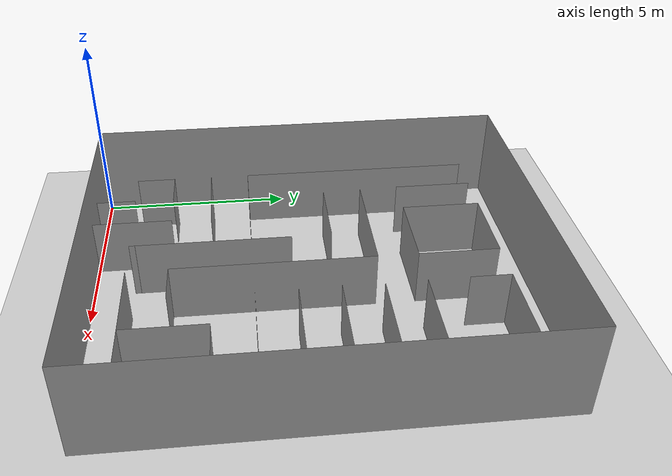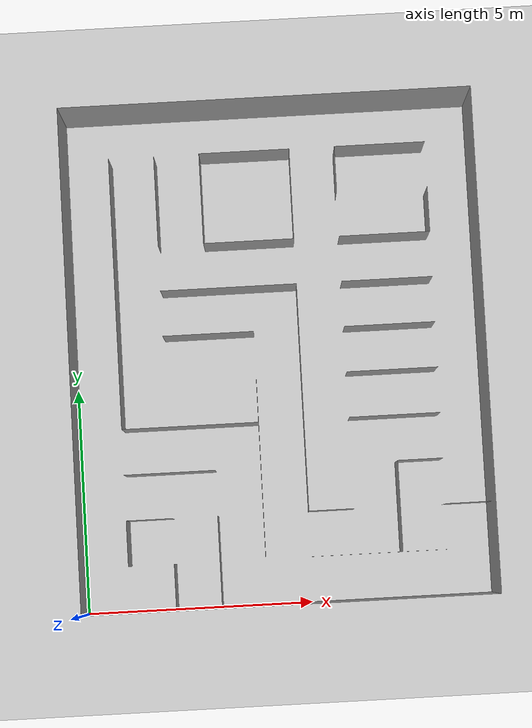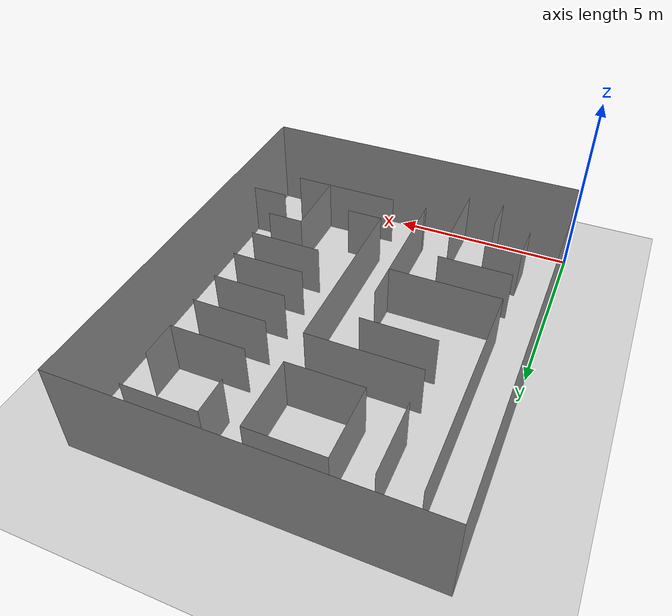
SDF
<sdf version="1.7">
 <world name="default">
  <light name="sun" type="directional">
   <pose>0 0 10 0 -0 0</pose>
   <diffuse>0.8 0.8 0.8 1</diffuse>
   <specular>0.2 0.2 0.2 1</specular>
   <attenuation>
    <range>1000</range>
    <constant>0.9</constant>
    <linear>0.01</linear>
    <quadratic>0.001</quadratic>
   </attenuation>
   <direction>-0.5 0.1 -0.9</direction>
   <spot><inner_angle>0</inner_angle><outer_angle>0</outer_angle><falloff>0</falloff></spot>
  </light>
  <model name="ground_plane">
   <static>1</static>
   <link name="link">
    <collision name="collision">
     <geometry><plane><normal>0 0 1</normal><size>100 100</size></plane></geometry>
     <surface>
      <contact><collide_bitmask>65535</collide_bitmask></contact>
      <friction><ode><mu>100</mu><mu2>50</mu2></ode></friction>
     </surface>
    </collision>
    <visual name="visual">
     <cast_shadows>0</cast_shadows>
     <geometry><plane><normal>0 0 1</normal><size>100 100</size></plane></geometry>
     <material>
      <script><uri>file://media/materials/scripts/gazebo.material</uri><name>Gazebo/Grey</name></script>
     </material>
    </visual>
   </link>
  </model>
  <gravity>0 0 -9.8</gravity>
  <magnetic_field>6e-06 2.3e-05 -4.2e-05</magnetic_field>
  <atmosphere type="adiabatic"/>
  <physics type="ode">
   <max_step_size>0.001</max_step_size>
   <real_time_factor>1</real_time_factor>
   <real_time_update_rate>1000</real_time_update_rate>
  </physics>
  <scene><ambient>0.4 0.4 0.4 1</ambient><background>0.7 0.7 0.7 1</background><shadows>1</shadows></scene>
  <spherical_coordinates>
   <surface_model>EARTH_WGS84</surface_model>
   <latitude_deg>0</latitude_deg>
   <longitude_deg>0</longitude_deg>
   <elevation>0</elevation>
   <heading_deg>0</heading_deg>
  </spherical_coordinates>
  <model name="Pacturtle_v2">
   <pose>4.5088 5.50985 0 0 -0 0</pose>
   <link name="Wall_1">
    <collision name="Wall_1_Collision">
     <geometry><box><size>2 0.01 1.5</size></box></geometry>
     <pose>0 0 0.75 0 -0 0</pose>
    </collision>
    <visual name="Wall_1_Visual">
     <pose>0 0 0.75 0 -0 0</pose>
     <geometry><box><size>2 0 1.5</size></box></geometry>
     <material>
      <script><uri>file://media/materials/scripts/gazebo.material</uri><name>Gazebo/Grey</name></script>
      <ambient>1 1 1 1</ambient>
     </material>
     <meta><layer>0</layer></meta>
    </visual>
    <pose>-1.5 0.5 0 0 -0 0</pose>
   </link>
   <link name="Wall_11">
    <collision name="Wall_11_Collision">
     <geometry><box><size>6 0.01 1.5</size></box></geometry>
     <pose>0 0 0.75 0 -0 0</pose>
    </collision>
    <visual name="Wall_11_Visual">
     <pose>0 0 0.75 0 -0 0</pose>
     <geometry><box><size>6 0 1.5</size></box></geometry>
     <material>
      <script><uri>file://media/materials/scripts/gazebo.material</uri><name>Gazebo/Grey</name></script>
      <ambient>1 1 1 1</ambient>
     </material>
     <meta><layer>0</layer></meta>
    </visual>
    <pose>-3.5 1.5 0 0 -0 1.5708</pose>
   </link>
   <link name="Wall_13">
    <collision name="Wall_13_Collision">
     <geometry><box><size>3 0.01 1.5</size></box></geometry>
     <pose>0 0 0.75 0 -0 0</pose>
    </collision>
    <visual name="Wall_13_Visual">
     <pose>0 0 0.75 0 -0 0</pose>
     <geometry><box><size>3 0 1.5</size></box></geometry>
     <material>
      <script><uri>file://media/materials/scripts/gazebo.material</uri><name>Gazebo/Grey</name></script>
      <ambient>1 1 1 1</ambient>
     </material>
     <meta><layer>0</layer></meta>
    </visual>
    <pose>-1 1.5 0 0 -0 0</pose>
   </link>
   <link name="Wall_16">
    <collision name="Wall_16_Collision">
     <geometry><box><size>5 0.01 1.5</size></box></geometry>
     <pose>0 0 0.75 0 -0 0</pose>
    </collision>
    <visual name="Wall_16_Visual">
     <pose>0 0 0.75 0 -0 0</pose>
     <geometry><box><size>5 0 1.5</size></box></geometry>
     <material>
      <script><uri>file://media/materials/scripts/gazebo.material</uri><name>Gazebo/Grey</name></script>
      <ambient>1 1 1 1</ambient>
     </material>
     <meta><layer>0</layer></meta>
    </visual>
    <pose>0.5 -1 0 0 -0 -1.5708</pose>
   </link>
   <link name="Wall_18">
    <collision name="Wall_18_Collision">
     <geometry><box><size>1 0.01 1.5</size></box></geometry>
     <pose>0 0 0.75 0 -0 0</pose>
    </collision>
    <visual name="Wall_18_Visual">
     <pose>0 0 0.75 0 -0 0</pose>
     <geometry><box><size>1 0 1.5</size></box></geometry>
     <material>
      <script><uri>file://media/materials/scripts/gazebo.material</uri><name>Gazebo/Grey</name></script>
      <ambient>1 1 1 1</ambient>
     </material>
     <meta><layer>0</layer></meta>
    </visual>
    <pose>1 -3.5 0 0 -0 0</pose>
   </link>
   <link name="Wall_20">
    <collision name="Wall_20_Collision">
     <geometry><box><size>3 0.01 1.5</size></box></geometry>
     <pose>0 0 0.75 0 -0 0</pose>
    </collision>
    <visual name="Wall_20_Visual">
     <pose>0 0 0.75 0 -0 0</pose>
     <geometry><box><size>3 0 1.5</size></box></geometry>
     <material>
      <script><uri>file://media/materials/scripts/gazebo.material</uri><name>Gazebo/Grey</name></script>
      <ambient>1 1 1 1</ambient>
     </material>
     <meta><layer>0</layer></meta>
    </visual>
    <pose>2 -4.5 0 0 -0 0</pose>
   </link>
   <link name="Wall_22">
    <collision name="Wall_22_Collision">
     <geometry><box><size>2 0.01 1.5</size></box></geometry>
     <pose>0 0 0.75 0 -0 0</pose>
    </collision>
    <visual name="Wall_22_Visual">
     <pose>0 0 0.75 0 -0 0</pose>
     <geometry><box><size>2 0 1.5</size></box></geometry>
     <material>
      <script><uri>file://media/materials/scripts/gazebo.material</uri><name>Gazebo/Grey</name></script>
      <ambient>1 1 1 1</ambient>
     </material>
     <meta><layer>0</layer></meta>
    </visual>
    <pose>2.5 -3.5 0 0 -0 1.5708</pose>
   </link>
   <link name="Wall_24">
    <collision name="Wall_24_Collision">
     <geometry><box><size>1 0.01 1.5</size></box></geometry>
     <pose>0 0 0.75 0 -0 0</pose>
    </collision>
    <visual name="Wall_24_Visual">
     <pose>0 0 0.75 0 -0 0</pose>
     <geometry><box><size>1 0 1.5</size></box></geometry>
     <material>
      <script><uri>file://media/materials/scripts/gazebo.material</uri><name>Gazebo/Grey</name></script>
      <ambient>1 1 1 1</ambient>
     </material>
     <meta><layer>0</layer></meta>
    </visual>
    <pose>3 -2.5 0 0 -0 0</pose>
   </link>
   <link name="Wall_26">
    <collision name="Wall_26_Collision">
     <geometry><box><size>1 0.01 1.5</size></box></geometry>
     <pose>0 0 0.75 0 -0 0</pose>
    </collision>
    <visual name="Wall_26_Visual">
     <pose>0 0 0.75 0 -0 0</pose>
     <geometry><box><size>1 0 1.5</size></box></geometry>
     <material>
      <script><uri>file://media/materials/scripts/gazebo.material</uri><name>Gazebo/Grey</name></script>
      <ambient>1 1 1 1</ambient>
     </material>
     <meta><layer>0</layer></meta>
    </visual>
    <pose>4 -3.5 0 0 -0 0</pose>
   </link>
   <link name="Wall_28">
    <collision name="Wall_28_Collision">
     <geometry><box><size>2 0.01 1.5</size></box></geometry>
     <pose>0 0 0.75 0 -0 0</pose>
    </collision>
    <visual name="Wall_28_Visual">
     <pose>0 0 0.75 0 -0 0</pose>
     <geometry><box><size>2 0 1.5</size></box></geometry>
     <material>
      <script><uri>file://media/materials/scripts/gazebo.material</uri><name>Gazebo/Grey</name></script>
      <ambient>1 1 1 1</ambient>
     </material>
     <meta><layer>0</layer></meta>
    </visual>
    <pose>-2.5 -2.5 0 0 -0 0</pose>
   </link>
   <link name="Wall_30">
    <collision name="Wall_30_Collision">
     <geometry><box><size>1 0.01 1.5</size></box></geometry>
     <pose>0 0 0.75 0 -0 0</pose>
    </collision>
    <visual name="Wall_30_Visual">
     <pose>0 0 0.75 0 -0 0</pose>
     <geometry><box><size>1 0 1.5</size></box></geometry>
     <material>
      <script><uri>file://media/materials/scripts/gazebo.material</uri><name>Gazebo/Grey</name></script>
      <ambient>1 1 1 1</ambient>
     </material>
     <meta><layer>0</layer></meta>
    </visual>
    <pose>-3 -3.5 0 0 -0 0</pose>
   </link>
   <link name="Wall_32">
    <collision name="Wall_32_Collision">
     <geometry><box><size>1 0.01 1.5</size></box></geometry>
     <pose>0 0 0.75 0 -0 0</pose>
    </collision>
    <visual name="Wall_32_Visual">
     <pose>0 0 0.75 0 -0 0</pose>
     <geometry><box><size>1 0 1.5</size></box></geometry>
     <material>
      <script><uri>file://media/materials/scripts/gazebo.material</uri><name>Gazebo/Grey</name></script>
      <ambient>1 1 1 1</ambient>
     </material>
     <meta><layer>0</layer></meta>
    </visual>
    <pose>-3.5 -4 0 0 -0 -1.5708</pose>
   </link>
   <link name="Wall_34">
    <collision name="Wall_34_Collision">
     <geometry><box><size>1 0.01 1.5</size></box></geometry>
     <pose>0 0 0.75 0 -0 0</pose>
    </collision>
    <visual name="Wall_34_Visual">
     <pose>0 0 0.75 0 -0 0</pose>
     <geometry><box><size>1 0 1.5</size></box></geometry>
     <material>
      <script><uri>file://media/materials/scripts/gazebo.material</uri><name>Gazebo/Grey</name></script>
      <ambient>1 1 1 1</ambient>
     </material>
     <meta><layer>0</layer></meta>
    </visual>
    <pose>-2.5 -5 0 0 -0 -1.5708</pose>
   </link>
   <link name="Wall_36">
    <collision name="Wall_36_Collision">
     <geometry><box><size>2 0.01 1.5</size></box></geometry>
     <pose>0 0 0.75 0 -0 0</pose>
    </collision>
    <visual name="Wall_36_Visual">
     <pose>0 0 0.75 0 -0 0</pose>
     <geometry><box><size>2 0 1.5</size></box></geometry>
     <material>
      <script><uri>file://media/materials/scripts/gazebo.material</uri><name>Gazebo/Grey</name></script>
      <ambient>1 1 1 1</ambient>
     </material>
     <meta><layer>0</layer></meta>
    </visual>
    <pose>-1.5 -4.5 0 0 -0 -1.5708</pose>
   </link>
   <link name="Wall_38">
    <collision name="Wall_38_Collision">
     <geometry><box><size>2 0.01 1.5</size></box></geometry>
     <pose>0 0 0.75 0 -0 0</pose>
    </collision>
    <visual name="Wall_38_Visual">
     <pose>0 0 0.75 0 -0 0</pose>
     <geometry><box><size>2 0 1.5</size></box></geometry>
     <material>
      <script><uri>file://media/materials/scripts/gazebo.material</uri><name>Gazebo/Grey</name></script>
      <ambient>1 1 1 1</ambient>
     </material>
     <meta><layer>0</layer></meta>
    </visual>
    <pose>2.5 -1.5 0 0 -0 0</pose>
   </link>
   <link name="Wall_40">
    <collision name="Wall_40_Collision">
     <geometry><box><size>2 0.01 1.5</size></box></geometry>
     <pose>0 0 0.75 0 -0 0</pose>
    </collision>
    <visual name="Wall_40_Visual">
     <pose>0 0 0.75 0 -0 0</pose>
     <geometry><box><size>2 0 1.5</size></box></geometry>
     <material>
      <script><uri>file://media/materials/scripts/gazebo.material</uri><name>Gazebo/Grey</name></script>
      <ambient>1 1 1 1</ambient>
     </material>
     <meta><layer>0</layer></meta>
    </visual>
    <pose>2.5 -0.5 0 0 -0 0</pose>
   </link>
   <link name="Wall_42">
    <collision name="Wall_42_Collision">
     <geometry><box><size>2 0.01 1.5</size></box></geometry>
     <pose>0 0 0.75 0 -0 0</pose>
    </collision>
    <visual name="Wall_42_Visual">
     <pose>0 0 0.75 0 -0 0</pose>
     <geometry><box><size>2 0 1.5</size></box></geometry>
     <material>
      <script><uri>file://media/materials/scripts/gazebo.material</uri><name>Gazebo/Grey</name></script>
      <ambient>1 1 1 1</ambient>
     </material>
     <meta><layer>0</layer></meta>
    </visual>
    <pose>2.5 0.5 0 0 -0 0</pose>
   </link>
   <link name="Wall_44">
    <collision name="Wall_44_Collision">
     <geometry><box><size>2 0.01 1.5</size></box></geometry>
     <pose>0 0 0.75 0 -0 0</pose>
    </collision>
    <visual name="Wall_44_Visual">
     <pose>0 0 0.75 0 -0 0</pose>
     <geometry><box><size>2 0 1.5</size></box></geometry>
     <material>
      <script><uri>file://media/materials/scripts/gazebo.material</uri><name>Gazebo/Grey</name></script>
      <ambient>1 1 1 1</ambient>
     </material>
     <meta><layer>0</layer></meta>
    </visual>
    <pose>2.5 1.5 0 0 -0 0</pose>
   </link>
   <link name="Wall_46">
    <collision name="Wall_46_Collision">
     <geometry><box><size>2 0.01 1.5</size></box></geometry>
     <pose>0 0 0.75 0 -0 0</pose>
    </collision>
    <visual name="Wall_46_Visual">
     <pose>0 0 0.75 0 -0 0</pose>
     <geometry><box><size>2 0 1.5</size></box></geometry>
     <material>
      <script><uri>file://media/materials/scripts/gazebo.material</uri><name>Gazebo/Grey</name></script>
      <ambient>1 1 1 1</ambient>
     </material>
     <meta><layer>0</layer></meta>
    </visual>
    <pose>2.5 2.5 0 0 -0 0</pose>
   </link>
   <link name="Wall_47">
    <collision name="Wall_47_Collision">
     <geometry><box><size>1 0.01 1.5</size></box></geometry>
     <pose>0 0 0.75 0 -0 0</pose>
    </collision>
    <visual name="Wall_47_Visual">
     <pose>0 0 0.75 0 -0 0</pose>
     <geometry><box><size>1 0 1.5</size></box></geometry>
     <material>
      <script><uri>file://media/materials/scripts/gazebo.material</uri><name>Gazebo/Grey</name></script>
      <ambient>1 1 1 1</ambient>
     </material>
     <meta><layer>0</layer></meta>
    </visual>
    <pose>3.5 3 0 0 -0 1.5708</pose>
   </link>
   <link name="Wall_49">
    <collision name="Wall_49_Collision">
     <geometry><box><size>1 0.01 1.5</size></box></geometry>
     <pose>0 0 0.75 0 -0 0</pose>
    </collision>
    <visual name="Wall_49_Visual">
     <pose>0 0 0.75 0 -0 0</pose>
     <geometry><box><size>1 0 1.5</size></box></geometry>
     <material>
      <script><uri>file://media/materials/scripts/gazebo.material</uri><name>Gazebo/Grey</name></script>
      <ambient>1 1 1 1</ambient>
     </material>
     <meta><layer>0</layer></meta>
    </visual>
    <pose>1.5 4 0 0 -0 1.5708</pose>
   </link>
   <link name="Wall_5">
    <collision name="Wall_5_Collision">
     <geometry><box><size>3.85 0.01 1.5</size></box></geometry>
     <pose>0 0 0.75 0 -0 0</pose>
    </collision>
    <visual name="Wall_5_Visual">
     <pose>0 0 0.75 0 -0 0</pose>
     <geometry><box><size>3.85 0 1.5</size></box></geometry>
     <material>
      <script><uri>file://media/materials/scripts/gazebo.material</uri><name>Gazebo/Grey</name></script>
      <ambient>1 1 1 1</ambient>
     </material>
     <meta><layer>0</layer></meta>
    </visual>
    <pose>-0.5 -2.425 0 0 -0 -1.5708</pose>
   </link>
   <link name="Wall_50">
    <collision name="Wall_50_Collision">
     <geometry><box><size>2 0.01 1.5</size></box></geometry>
     <pose>0 0 0.75 0 -0 0</pose>
    </collision>
    <visual name="Wall_50_Visual">
     <pose>0 0 0.75 0 -0 0</pose>
     <geometry><box><size>2 0 1.5</size></box></geometry>
     <material>
      <script><uri>file://media/materials/scripts/gazebo.material</uri><name>Gazebo/Grey</name></script>
      <ambient>1 1 1 1</ambient>
     </material>
     <meta><layer>0</layer></meta>
    </visual>
    <pose>2.5 4.5 0 0 -0 0</pose>
   </link>
   <link name="Wall_52">
    <collision name="Wall_52_Collision">
     <geometry><box><size>2 0.01 1.5</size></box></geometry>
     <pose>0 0 0.75 0 -0 0</pose>
    </collision>
    <visual name="Wall_52_Visual">
     <pose>0 0 0.75 0 -0 0</pose>
     <geometry><box><size>2 0 1.5</size></box></geometry>
     <material>
      <script><uri>file://media/materials/scripts/gazebo.material</uri><name>Gazebo/Grey</name></script>
      <ambient>1 1 1 1</ambient>
     </material>
     <meta><layer>0</layer></meta>
    </visual>
    <pose>0.5 3.5 0 0 -0 -1.5708</pose>
   </link>
   <link name="Wall_53">
    <collision name="Wall_53_Collision">
     <geometry><box><size>2 0.01 1.5</size></box></geometry>
     <pose>0 0 0.75 0 -0 0</pose>
    </collision>
    <visual name="Wall_53_Visual">
     <pose>0 0 0.75 0 -0 0</pose>
     <geometry><box><size>2 0 1.5</size></box></geometry>
     <material>
      <script><uri>file://media/materials/scripts/gazebo.material</uri><name>Gazebo/Grey</name></script>
      <ambient>1 1 1 1</ambient>
     </material>
     <meta><layer>0</layer></meta>
    </visual>
    <pose>-0.5 2.5 0 0 -0 3.14159</pose>
   </link>
   <link name="Wall_54">
    <collision name="Wall_54_Collision">
     <geometry><box><size>2 0.01 1.5</size></box></geometry>
     <pose>0 0 0.75 0 -0 0</pose>
    </collision>
    <visual name="Wall_54_Visual">
     <pose>0 0 0.75 0 -0 0</pose>
     <geometry><box><size>2 0 1.5</size></box></geometry>
     <material>
      <script><uri>file://media/materials/scripts/gazebo.material</uri><name>Gazebo/Grey</name></script>
      <ambient>1 1 1 1</ambient>
     </material>
     <meta><layer>0</layer></meta>
    </visual>
    <pose>-1.5 3.5 0 0 -0 1.5708</pose>
   </link>
   <link name="Wall_55">
    <collision name="Wall_55_Collision">
     <geometry><box><size>2 0.01 1.5</size></box></geometry>
     <pose>0 0 0.75 0 -0 0</pose>
    </collision>
    <visual name="Wall_55_Visual">
     <pose>0 0 0.75 0 -0 0</pose>
     <geometry><box><size>2 0 1.5</size></box></geometry>
     <material>
      <script><uri>file://media/materials/scripts/gazebo.material</uri><name>Gazebo/Grey</name></script>
      <ambient>1 1 1 1</ambient>
     </material>
     <meta><layer>0</layer></meta>
    </visual>
    <pose>-0.5 4.5 0 0 -0 0</pose>
   </link>
   <link name="Wall_57">
    <collision name="Wall_57_Collision">
     <geometry><box><size>2 0.01 1.5</size></box></geometry>
     <pose>0 0 0.75 0 -0 0</pose>
    </collision>
    <visual name="Wall_57_Visual">
     <pose>0 0 0.75 0 -0 0</pose>
     <geometry><box><size>2 0 1.5</size></box></geometry>
     <material>
      <script><uri>file://media/materials/scripts/gazebo.material</uri><name>Gazebo/Grey</name></script>
      <ambient>1 1 1 1</ambient>
     </material>
     <meta><layer>0</layer></meta>
    </visual>
    <pose>-2.5 3.5 0 0 -0 -1.5708</pose>
   </link>
   <link name="Wall_59">
    <collision name="Wall_59_Collision">
     <geometry><box><size>9 0.01 2.5</size></box></geometry>
     <pose>0 0 1.25 0 -0 0</pose>
    </collision>
    <visual name="Wall_59_Visual">
     <pose>0 0 1.25 0 -0 0</pose>
     <geometry><box><size>9 0 2.5</size></box></geometry>
     <material>
      <script><uri>file://media/materials/scripts/gazebo.material</uri><name>Gazebo/Grey</name></script>
      <ambient>1 1 1 1</ambient>
     </material>
     <meta><layer>0</layer></meta>
    </visual>
    <pose>0 -5.5 0 0 -0 0</pose>
   </link>
   <link name="Wall_61">
    <collision name="Wall_61_Collision">
     <geometry><box><size>11 0.01 2.5</size></box></geometry>
     <pose>0 0 1.25 0 -0 0</pose>
    </collision>
    <visual name="Wall_61_Visual">
     <pose>0 0 1.25 0 -0 0</pose>
     <geometry><box><size>11 0 2.5</size></box></geometry>
     <material>
      <script><uri>file://media/materials/scripts/gazebo.material</uri><name>Gazebo/Grey</name></script>
      <ambient>1 1 1 1</ambient>
     </material>
     <meta><layer>0</layer></meta>
    </visual>
    <pose>-4.5 0 0 0 -0 1.5708</pose>
   </link>
   <link name="Wall_62">
    <collision name="Wall_62_Collision">
     <geometry><box><size>9 0.01 2.5</size></box></geometry>
     <pose>0 0 1.25 0 -0 0</pose>
    </collision>
    <visual name="Wall_62_Visual">
     <pose>0 0 1.25 0 -0 0</pose>
     <geometry><box><size>9 0 2.5</size></box></geometry>
     <material>
      <script><uri>file://media/materials/scripts/gazebo.material</uri><name>Gazebo/Grey</name></script>
      <ambient>1 1 1 1</ambient>
     </material>
     <meta><layer>0</layer></meta>
    </visual>
    <pose>0 5.5 0 0 -0 0</pose>
   </link>
   <link name="Wall_63">
    <collision name="Wall_63_Collision">
     <geometry><box><size>11 0.01 2.5</size></box></geometry>
     <pose>0 0 1.25 0 -0 0</pose>
    </collision>
    <visual name="Wall_63_Visual">
     <pose>0 0 1.25 0 -0 0</pose>
     <geometry><box><size>11 0 2.5</size></box></geometry>
     <material>
      <script><uri>file://media/materials/scripts/gazebo.material</uri><name>Gazebo/Grey</name></script>
      <ambient>1 1 1 1</ambient>
     </material>
     <meta><layer>0</layer></meta>
    </visual>
    <pose>4.5 0 0 0 -0 -1.5708</pose>
   </link>
   <link name="Wall_7">
    <collision name="Wall_7_Collision">
     <geometry><box><size>0.15 0.01 1.5</size></box></geometry>
     <pose>0 0 0.75 0 -0 0</pose>
    </collision>
    <visual name="Wall_7_Visual">
     <pose>0 0 0.75 0 -0 0</pose>
     <geometry><box><size>0.15 0 1.5</size></box></geometry>
     <material>
      <script><uri>file://media/materials/scripts/gazebo.material</uri><name>Gazebo/Grey</name></script>
      <ambient>1 1 1 1</ambient>
     </material>
     <meta><layer>0</layer></meta>
    </visual>
    <pose>-0.5 -4.425 0 0 -0 -1.5708</pose>
   </link>
   <link name="Wall_9">
    <collision name="Wall_9_Collision">
     <geometry><box><size>3 0.01 1.5</size></box></geometry>
     <pose>0 0 0.75 0 -0 0</pose>
    </collision>
    <visual name="Wall_9_Visual">
     <pose>0 0 0.75 0 -0 0</pose>
     <geometry><box><size>3 0 1.5</size></box></geometry>
     <material>
      <script><uri>file://media/materials/scripts/gazebo.material</uri><name>Gazebo/Grey</name></script>
      <ambient>1 1 1 1</ambient>
     </material>
     <meta><layer>0</layer></meta>
    </visual>
    <pose>-2 -1.5 0 0 -0 3.14159</pose>
   </link>
   <static>1</static>
  </model>
 </world>
</sdf>
